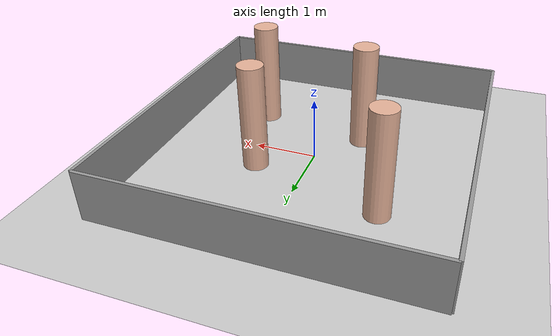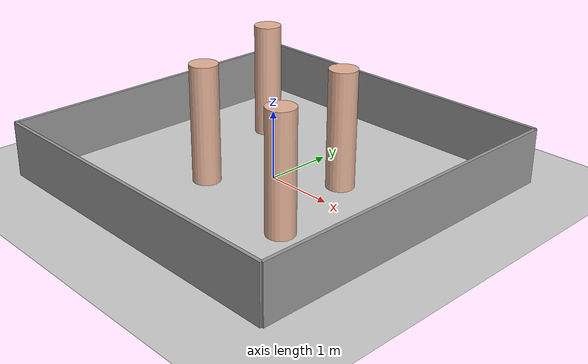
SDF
<?xml version="1.0" ?>
<sdf version="1.6">
  <world name="dynamic_human_zone">
    <include><uri>model://ground_plane</uri></include>
    <include><uri>model://sun</uri></include>

    <!-- Room boundary (5m x 5m) -->
    <model name="wall_n"><static>true</static><pose>0 2.5 0.4 0 0 0</pose>
      <link name="link"><collision name="c"><geometry><box><size>5 0.05 0.8</size></box></geometry></collision>
      <visual name="v"><geometry><box><size>5 0.05 0.8</size></box></geometry><material><ambient>0.6 0.6 0.6 1</ambient></material></visual></link></model>
    <model name="wall_s"><static>true</static><pose>0 -2.5 0.4 0 0 0</pose>
      <link name="link"><collision name="c"><geometry><box><size>5 0.05 0.8</size></box></geometry></collision>
      <visual name="v"><geometry><box><size>5 0.05 0.8</size></box></geometry><material><ambient>0.6 0.6 0.6 1</ambient></material></visual></link></model>
    <model name="wall_e"><static>true</static><pose>2.5 0 0.4 0 0 1.5708</pose>
      <link name="link"><collision name="c"><geometry><box><size>5 0.05 0.8</size></box></geometry></collision>
      <visual name="v"><geometry><box><size>5 0.05 0.8</size></box></geometry><material><ambient>0.6 0.6 0.6 1</ambient></material></visual></link></model>
    <model name="wall_w"><static>true</static><pose>-2.5 0 0.4 0 0 1.5708</pose>
      <link name="link"><collision name="c"><geometry><box><size>5 0.05 0.8</size></box></geometry></collision>
      <visual name="v"><geometry><box><size>5 0.05 0.8</size></box></geometry><material><ambient>0.6 0.6 0.6 1</ambient></material></visual></link></model>

    <!-- Human-proxy obstacles: cylinders sized roughly like standing people -->
    <model name="person1"><static>true</static><pose>0.8 0.5 0.85 0 0 0</pose>
      <link name="link"><collision name="c"><geometry><cylinder><radius>0.2</radius><length>1.7</length></cylinder></geometry></collision>
      <visual name="v"><geometry><cylinder><radius>0.2</radius><length>1.7</length></cylinder></geometry><material><ambient>0.9 0.7 0.6 1</ambient></material></visual></link></model>
    <model name="person2"><static>true</static><pose>-0.6 -0.7 0.85 0 0 0</pose>
      <link name="link"><collision name="c"><geometry><cylinder><radius>0.2</radius><length>1.7</length></cylinder></geometry></collision>
      <visual name="v"><geometry><cylinder><radius>0.2</radius><length>1.7</length></cylinder></geometry><material><ambient>0.9 0.7 0.6 1</ambient></material></visual></link></model>
    <model name="person3"><static>true</static><pose>1.2 -1.0 0.85 0 0 0</pose>
      <link name="link"><collision name="c"><geometry><cylinder><radius>0.2</radius><length>1.7</length></cylinder></geometry></collision>
      <visual name="v"><geometry><cylinder><radius>0.2</radius><length>1.7</length></cylinder></geometry><material><ambient>0.9 0.7 0.6 1</ambient></material></visual></link></model>
    <model name="person4"><static>true</static><pose>-1.3 1.1 0.85 0 0 0</pose>
      <link name="link"><collision name="c"><geometry><cylinder><radius>0.2</radius><length>1.7</length></cylinder></geometry></collision>
      <visual name="v"><geometry><cylinder><radius>0.2</radius><length>1.7</length></cylinder></geometry><material><ambient>0.9 0.7 0.6 1</ambient></material></visual></link></model>

    <physics type="ode">
      <max_step_size>0.001</max_step_size>
      <real_time_factor>1</real_time_factor>
    </physics>
  </world>
</sdf>
